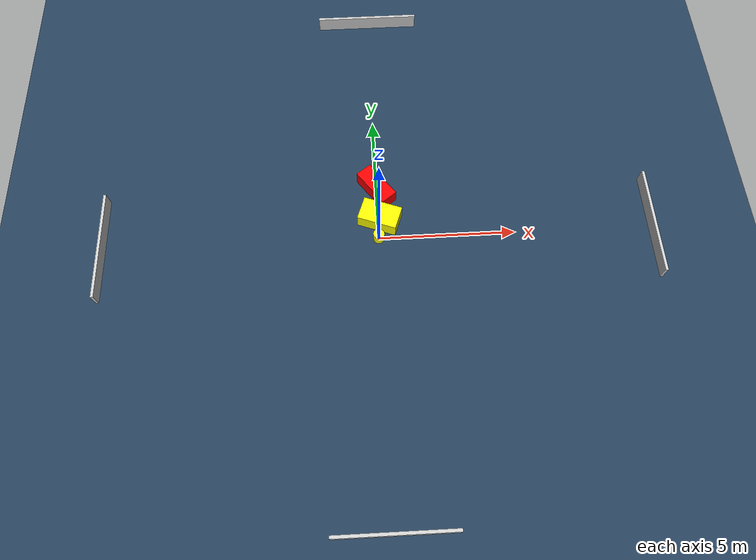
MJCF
<?xml version="1.0" ?>
<mujoco model="generated_environment">
  <option timestep="0.01" integrator="RK4" cone="elliptic"/>
  <default>
    <geom density="1"/>
  </default>
  <asset>
    <texture builtin="gradient" height="3072" name="skybox" rgb1="0.3 0.5 0.7" rgb2="0 0 0" type="skybox" width="512"/>
    <texture builtin="checker" height="300" name="groundplane" rgb1="0.2 0.3 0.4" rgb2="0.1 0.2 0.3" type="2d" width="300"/>
    <material name="groundplane" reflectance="0.2" texrepeat="5 5" texture="groundplane"/>
  </asset>
  <worldbody>
    <light dir="0 0 -1" directional="true" pos="0 0 1.5"/>
    <geom condim="3" friction="0.5 0.005 0.001" material="groundplane" name="floor" pos="0 0 0" size="0 0 0.05" type="plane"/>
    <body name="walls">
      <geom name="wall_1" condim="4" pos="-10.0 0.0 0.3" rgba="0.800000011920929 0.800000011920929 0.800000011920929 1.0" size="0.05 2.0 0.3" type="box"/>
      <geom name="wall_2" condim="4" pos="10.0 0.0 0.3" rgba="0.800000011920929 0.800000011920929 0.800000011920929 1.0" size="0.05 2.0 0.3" type="box"/>
      <geom name="wall_3" condim="4" pos="0.0 -10.0 0.3" rgba="0.800000011920929 0.800000011920929 0.800000011920929 1.0" size="2.0 0.05 0.3" type="box"/>
      <geom name="wall_4" condim="4" pos="0.0 10.0 0.3" rgba="0.800000011920929 0.800000011920929 0.800000011920929 1.0" size="2.0 0.05 0.3" type="box"/>
    </body>
    <body name="robot">
      <joint name="joint_x" type="slide" pos="0 0 0" axis="1 0 0"/>
      <joint name="joint_y" type="slide" pos="0 0 0" axis="0 1 0"/>
      <geom name="robot" type="cylinder" pos="0.0 0.0 0.2" size="0.2 0.2 0.0" mass="5.0" friction="1.0 0.005 0.0001" condim="4" rgba="1.0 1.0 0.0 1.0"/>
    </body>
    <body name="obstacle_1_movable">
      <geom name="obstacle_1_movable" condim="4" pos="0.07041992904687598 0.7618790159352772 0.3" euler="0 0 249.86106813598275" friction="0.0 0.005 0.001" rgba="1.0 1.0 0.0 1.0" size="0.435945646574546 0.7233677976739832 0.3" type="box" mass="0.1"/>
      <joint type="free"/>
    </body>
    <body name="obstacle_2_static">
      <geom name="obstacle_2_static" condim="4" pos="0.00134805056745989 1.995262874660337 0.3" euler="0 0 216.47429453856043" friction="0.0 0.005 0.001" rgba="1.0 0.0 0.0 1.0" size="0.31787634105831997 0.7652520757678771 0.3" type="box"/>
    </body>
  </worldbody>
  <actuator>
    <motor name="actuator_x" joint="joint_x" gear="1" ctrlrange="-1 1"/>
    <motor name="actuator_y" joint="joint_y" gear="1" ctrlrange="-1 1"/>
  </actuator>
</mujoco>
